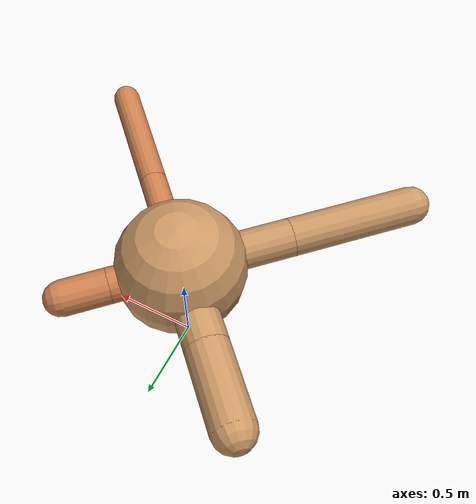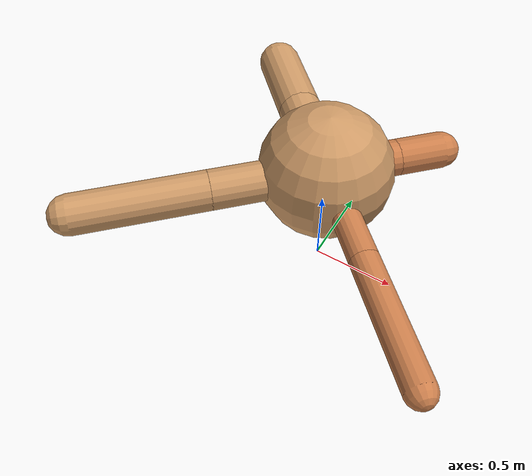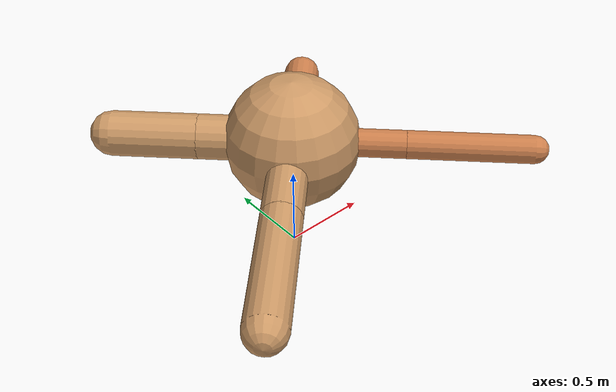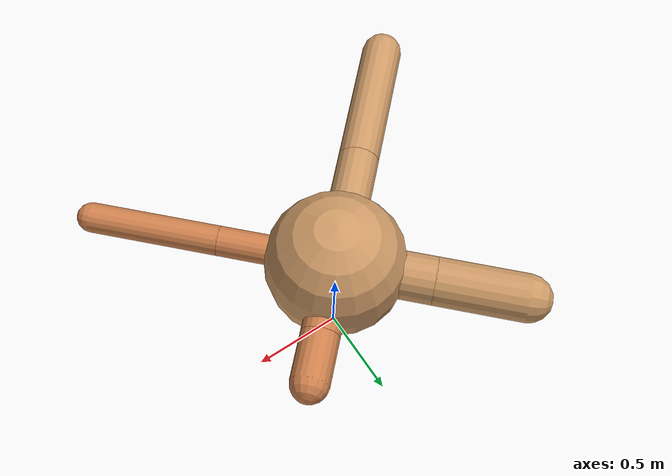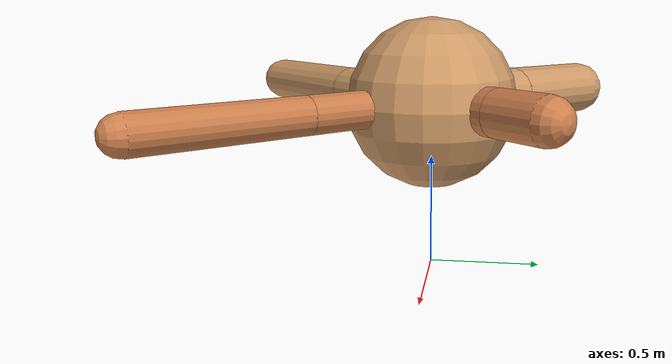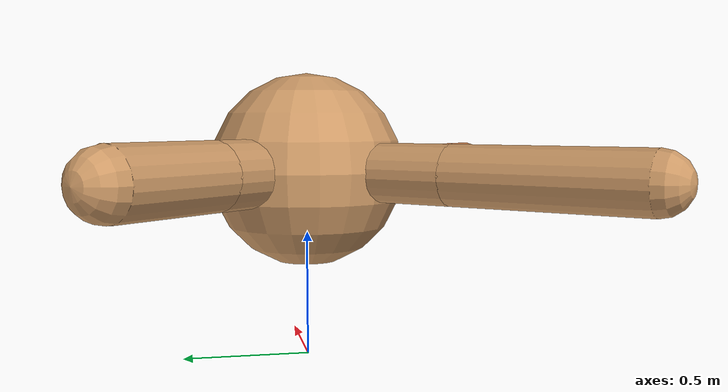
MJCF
<?xml version="1.0" ?>
<mujoco model="ant">

	<compiler angle="degree" coordinate="local" inertiafromgeom="true"/>

	<option integrator="RK4" timestep="0.01"/>

	<custom>

		<numeric data="0.0 0.0 0.55 1.0 0.0 0.0 0.0 0.0 1.0 0.0 -1.0 0.0 -1.0 0.0 1.0" name="init_qpos"/>

	</custom>

	<default>

		<joint armature="1" damping="1" limited="true"/>

		<geom conaffinity="0" condim="3" density="5.0" friction="1.5 0.1 0.1" margin="0.01" rgba="0.8 0.6 0.4 1"/>

	</default>

	<worldbody>

		<body name="torso" pos="0 0 0.75">

			<geom name="torso_geom" pos="0 0 0" size="0.3828871791737568" type="sphere"/>

			<!--joint armature="0" damping="0" limited="false" margin="0.01" name="root" pos="0 0 0" type="free"/-->

			<body name="front_left_leg" pos="0 0 0">

				<geom fromto="0 0 0 0.2 0.2 0" name="aux_1_geom" size="0.1043522294069241" type="capsule" rgba=".8 .5 .3 1"/>

				<body name="aux_1" pos="0.2 0.2 0">

					<joint axis="0 0 1" name="hip_1" pos="0.0 0.0 0.0" range="-40 40" type="hinge"/>

					<geom fromto="0 0 0 0.09430837049753256 0.09430837049753256 0" name="left_leg_geom" size="0.1043522294069241" type="capsule" rgba=".8 .5 .3 1"/>

					<body pos="0.09430837049753256 0.09430837049753256 0" name="front_left_foot">

						<joint axis="-1 1 0" name="ankle_1" pos="0.0 0.0 0.0" range="30 100" type="hinge"/>

						<geom fromto="0 0 0 0.18861674099506512 0.18861674099506512 0" name="left_ankle_geom" size="0.1043522294069241" type="capsule" rgba=".8 .5 .3 1"/>

					</body>

				</body>

			</body>

			<body name="front_right_leg" pos="0 0 0">

				<geom fromto="0 0 0 -0.2 0.2 0" name="aux_2_geom" size="0.12927858745669052" type="capsule"/>

				<body name="aux_2" pos="-0.2 0.2 0">

					<joint axis="0 0 1" name="hip_2" pos="0.0 0.0 0.0" range="-40 40" type="hinge"/>

					<geom fromto="0 0 0 -0.17219409888890258 0.17219409888890258 0" name="right_leg_geom" size="0.12927858745669052" type="capsule"/>

					<body pos="-0.17219409888890258 0.17219409888890258 0" name="front_right_foot">

						<joint axis="1 1 0" name="ankle_2" pos="0.0 0.0 0.0" range="-100 -30" type="hinge"/>

						<geom fromto="0 0 0 -0.34438819777780516 0.34438819777780516 0" name="right_ankle_geom" size="0.12927858745669052" type="capsule"/>

					</body>

				</body>

			</body>

			<body name="left_back_leg" pos="0 0 0">

				<geom fromto="0 0 0 -0.2 -0.2 0" name="aux_3_geom" size="0.11348811702448922" type="capsule"/>

				<body name="aux_3" pos="-0.2 -0.2 0">

					<joint axis="0 0 1" name="hip_3" pos="0.0 0.0 0.0" range="-40 40" type="hinge"/>

					<geom fromto="0 0 0 -0.26452532488069097 -0.26452532488069097 0" name="back_leg_geom" size="0.11348811702448922" type="capsule"/>

					<body pos="-0.26452532488069097 -0.26452532488069097 0" name="left_back_foot">

						<joint axis="-1 1 0" name="ankle_3" pos="0.0 0.0 0.0" range="-100 -30" type="hinge"/>

						<geom fromto="0 0 0 -0.5290506497613819 -0.5290506497613819 0" name="third_ankle_geom" size="0.11348811702448922" type="capsule"/>

					</body>

				</body>

			</body>

			<body name="right_back_leg" pos="0 0 0">

				<geom fromto="0 0 0 0.2 -0.2 0" name="aux_4_geom" size="0.08082594618945148" type="capsule" rgba=".8 .5 .3 1"/>

				<body name="aux_4" pos="0.2 -0.2 0">

					<joint axis="0 0 1" name="hip_4" pos="0.0 0.0 0.0" range="-40 40" type="hinge"/>

					<geom fromto="0 0 0 0.24905237166043076 -0.24905237166043076 0" name="rightback_leg_geom" size="0.08082594618945148" type="capsule" rgba=".8 .5 .3 1"/>

					<body pos="0.24905237166043076 -0.24905237166043076 0" name="right_back_foot">

						<joint axis="1 1 0" name="ankle_4" pos="0.0 0.0 0.0" range="30 100" type="hinge"/>

						<geom fromto="0 0 0 0.4981047433208615 -0.4981047433208615 0" name="fourth_ankle_geom" size="0.08082594618945148" type="capsule" rgba=".8 .5 .3 1"/>

					</body>

				</body>

			</body>

		</body>

	</worldbody>

	<actuator>

		<motor ctrllimited="true" ctrlrange="-1.0 1.0" joint="hip_4" gear="150"/>

		<motor ctrllimited="true" ctrlrange="-1.0 1.0" joint="ankle_4" gear="150"/>

		<motor ctrllimited="true" ctrlrange="-1.0 1.0" joint="hip_1" gear="150"/>

		<motor ctrllimited="true" ctrlrange="-1.0 1.0" joint="ankle_1" gear="150"/>

		<motor ctrllimited="true" ctrlrange="-1.0 1.0" joint="hip_2" gear="150"/>

		<motor ctrllimited="true" ctrlrange="-1.0 1.0" joint="ankle_2" gear="150"/>

		<motor ctrllimited="true" ctrlrange="-1.0 1.0" joint="hip_3" gear="150"/>

		<motor ctrllimited="true" ctrlrange="-1.0 1.0" joint="ankle_3" gear="150"/>

	</actuator>

</mujoco>
